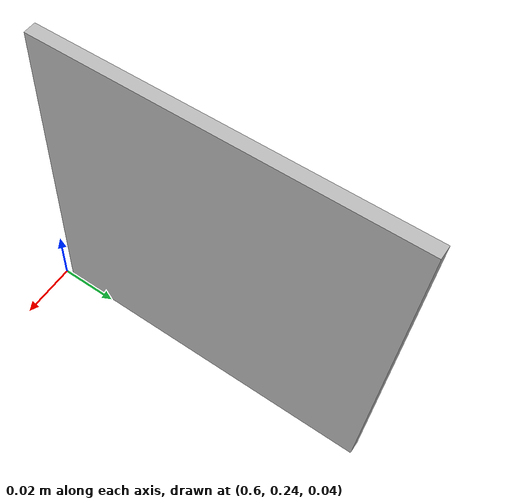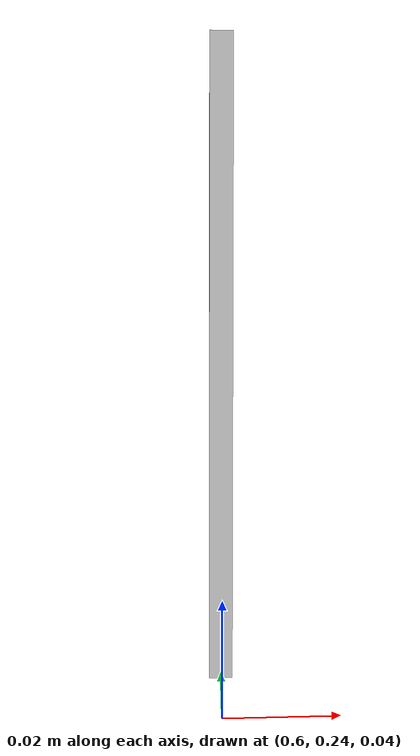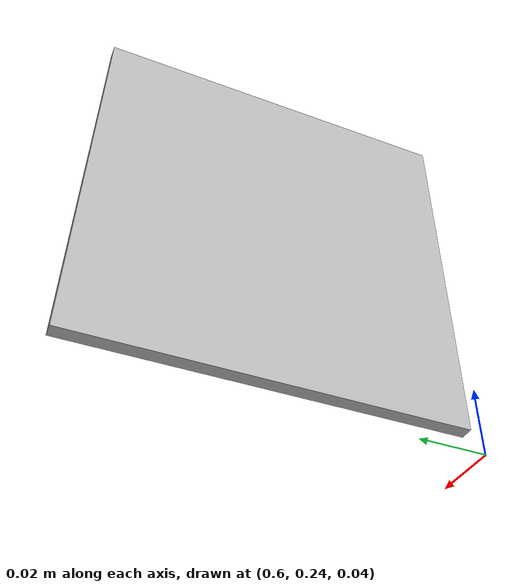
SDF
<?xml version='1.0'?>
<sdf version="1.6">
<model name="marker000">
  <pose>0.6 0.3 0.1 0 1.575 0</pose>
    <link name="link">
      <visual name="visual">
        <geometry>
          <box>
            <size>0.11 0.11 0.004</size>
          </box>
        </geometry>
        <material>
          <script>
            <uri>model://marker000/materials/marker000.material</uri>
            <name>marker000</name>
          </script>
        </material>
      </visual>
    </link>
  </model>
</sdf>
